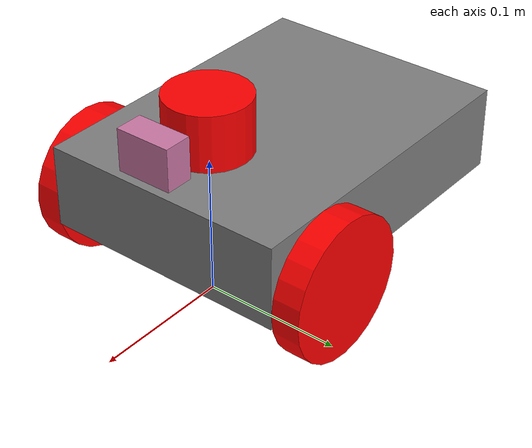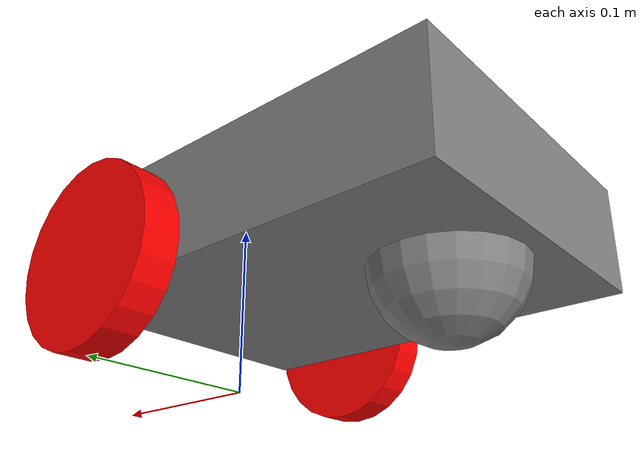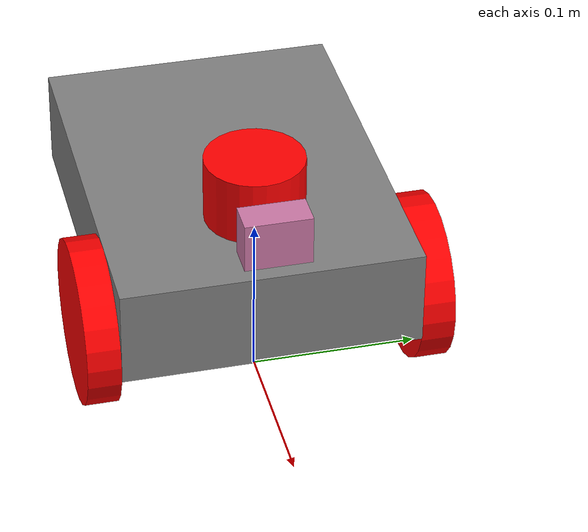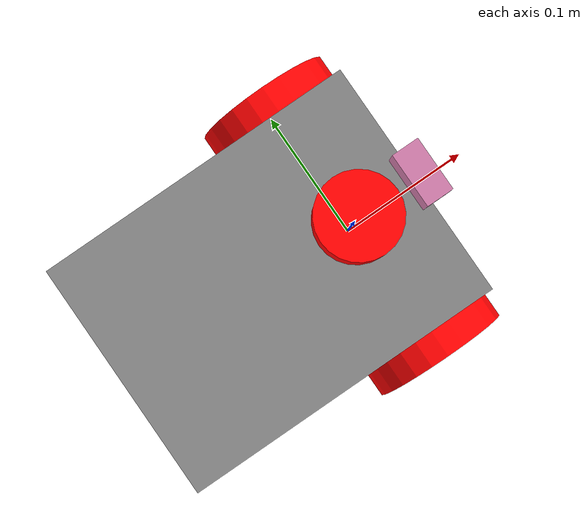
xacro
<?xml version="1.0"?>
<robot name="dtw_robot" xmlns:xacro="http://ros.org/wiki/xacro">
  <material name="gray"><color rgba="0.5 0.5 0.5 1.0"/></material>
  <material name="red"><color rgba="1.0 0.0 0.0 1.0"/></material>

  <xacro:macro name="wheel_macro" params="parent prefix xyz">
    <joint name="${prefix}_joint" type="continuous">
      <origin xyz="${xyz}" rpy="${radians(-90)} 0 0"/>
      <parent link="${parent}"/>
      <child link="${prefix}_link"/>
      <axis xyz="0 0 1"/>
      <limit velocity="12.0" effort="5.0"/>
      <dynamics damping="0.01"/>
    </joint>
    <link name="${prefix}_link">
      <inertial>
        <mass value="0.1"/>
        <inertia ixx="0.000066" ixy="0.0" ixz="0.0" iyy="0.000066" iyz="0.0" izz="0.000125"/>
      </inertial>
      <visual>
        <geometry><cylinder radius="0.05" length="0.02"/></geometry>
        <material name="red"/>
      </visual>
      <collision>
        <geometry><cylinder radius="0.05" length="0.02"/></geometry>
      </collision>
    </link>
    <gazebo reference="${prefix}_link">
      <material>Gazebo/Red</material>
      <mu1>1.0</mu1>
      <mu2>1.0</mu2>
      <kp>50000</kp>
      <kd>10</kd>
    </gazebo>
  </xacro:macro>

  <link name="base_link"/>

  <joint name="body_joint" type="fixed">
    <parent link="base_link"/>
    <child link="body_link"/>
    <origin xyz="-0.07 0 0.07" rpy="0 0 0"/>
  </joint>
  <link name="body_link">
    <inertial>
      <mass value="1.0"/>
      <inertia ixx="0.003" ixy="0.0" ixz="0.0" iyy="0.0051" iyz="0.0" izz="0.0075"/>
    </inertial>
    <visual>
      <geometry><box size="0.24 0.18 0.06"/></geometry>
      <material name="gray"/>
    </visual>
    <collision>
      <geometry><box size="0.24 0.178 0.06"/></geometry>
    </collision>
  </link>
  <gazebo reference="body_link"><material>Gazebo/Grey</material></gazebo>

  <xacro:wheel_macro prefix="left_wheel"  parent="base_link" xyz="0 0.1 0.05"/>
  <xacro:wheel_macro prefix="right_wheel" parent="base_link" xyz="0 -0.1 0.05"/>

  <joint name="ball_joint" type="fixed">
    <parent link="base_link"/>
    <child link="ball_link"/>
    <origin xyz="-0.14 0 0.04" rpy="0 0 0"/>
  </joint>
  <link name="ball_link">
    <inertial>
      <mass value="0.05"/>
      <inertia ixx="0.00001" ixy="0.0" ixz="0.0" iyy="0.00001" iyz="0.0" izz="0.00001"/>
    </inertial>
    <visual>
      <geometry><sphere radius="0.04"/></geometry>
      <material name="gray"/>
    </visual>
    <collision>
      <geometry><sphere radius="0.04"/></geometry>
    </collision>
  </link>
  <gazebo reference="ball_link">
    <material>Gazebo/Grey</material>
    <mu1>0.5</mu1>
    <mu2>0.5</mu2>
  </gazebo>

  <gazebo>
    <plugin name="diff_drive" filename="libgazebo_ros_diff_drive.so">
      <update_rate>50</update_rate>
      <left_joint>left_wheel_joint</left_joint>
      <right_joint>right_wheel_joint</right_joint>
      <wheel_separation>0.20</wheel_separation>
      <wheel_diameter>0.10</wheel_diameter>
      <max_wheel_torque>5.0</max_wheel_torque>
      <max_wheel_acceleration>10.0</max_wheel_acceleration>
      <command_topic>cmd_vel</command_topic>
      <odometry_topic>odom</odometry_topic>
      <odometry_frame>odom</odometry_frame>
      <robot_base_frame>base_link</robot_base_frame>
      <publish_odom>true</publish_odom>
      <publish_odom_tf>true</publish_odom_tf>
      <publish_wheel_tf>true</publish_wheel_tf>
    </plugin>
  </gazebo>

  <!-- LiDAR -->
  <joint name="laser_joint" type="fixed">
    <parent link="base_link"/>
    <child link="laser_link"/>
    <origin xyz="0.0 0 0.13" rpy="0 0 0"/>
  </joint>
  <link name="laser_link">
    <inertial>
      <mass value="0.1"/>
      <inertia ixx="0.00005" ixy="0.0" ixz="0.0" iyy="0.00005" iyz="0.0" izz="0.00005"/>
    </inertial>
    <visual>
      <geometry><cylinder radius="0.03" length="0.04"/></geometry>
      <material name="red"/>
    </visual>
  </link>
  <gazebo reference="laser_link">
    <sensor name="lidar" type="ray">
      <always_on>true</always_on>
      <visualize>false</visualize>
      <update_rate>10</update_rate>
      <ray>
        <scan>
          <horizontal>
            <samples>360</samples>
            <resolution>1</resolution>
            <min_angle>-3.14159</min_angle>
            <max_angle>3.14159</max_angle>
          </horizontal>
        </scan>
        <range>
          <min>0.12</min>
          <max>8.0</max>
          <resolution>0.01</resolution>
        </range>
        <noise>
          <type>gaussian</type>
          <mean>0.0</mean>
          <stddev>0.01</stddev>
        </noise>
      </ray>
      <plugin name="lidar_plugin" filename="libgazebo_ros_ray_sensor.so">
        <ros>
          <remapping>~/out:=scan</remapping>
        </ros>
        <output_type>sensor_msgs/LaserScan</output_type>
        <frame_name>laser_link</frame_name>
      </plugin>
    </sensor>
  </gazebo>

  <!-- front camera (added for dtw_vision) -->
  <joint name="camera_joint" type="fixed">
    <parent link="body_link"/><child link="camera_link"/><origin xyz="0.12 0 0.06" rpy="0 0 0"/>
  </joint>
  <link name="camera_link">
    <visual><geometry><box size="0.02 0.04 0.03"/></geometry></visual>
  </link>
  <gazebo reference="camera_link">
    <sensor type="camera" name="front_camera">
      <update_rate>10</update_rate>
      <camera>
        <horizontal_fov>1.2</horizontal_fov>
        <image><width>320</width><height>240</height><format>R8G8B8</format></image>
        <clip><near>0.05</near><far>20</far></clip>
      </camera>
      <plugin name="camera_plugin" filename="libgazebo_ros_camera.so">
        <camera_name>camera</camera_name><frame_name>camera_link</frame_name>
      </plugin>
    </sensor>
  </gazebo>
</robot>
